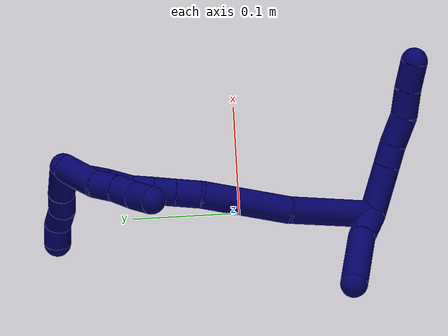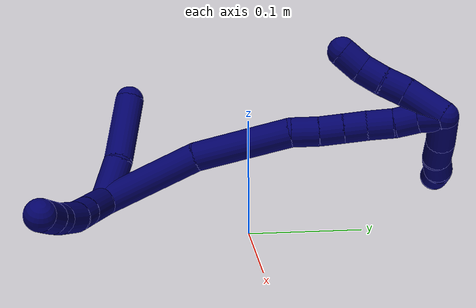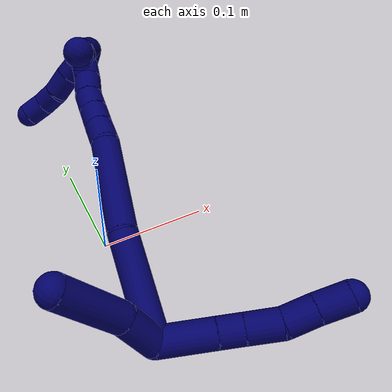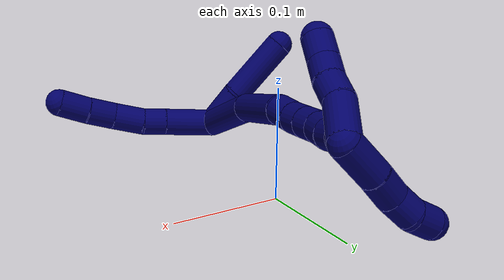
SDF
<sdf version="1.7">
 <world name="default">
  <model name="7">
   <static>0</static>
   <link name="7">
    <collision name="collision-cylinder-e_1_2_8">
     <pose>0.017908 -0.007844 0.012554 0.558454 0.880035 0.268352</pose>
     <geometry><cylinder><radius>0.0125</radius><length>0.046468</length></cylinder></geometry>
     <surface>
      <friction><ode><mu>1.16</mu><mu2>1.16</mu2><slip1>0</slip1><slip2>0</slip2></ode></friction>
      <contact><ode><kp>1e+06</kp><kd>1</kd><max_vel>0</max_vel><min_depth>0.001</min_depth></ode></contact>
     </surface>
    </collision>
    <visual name="visual-cylinder-e_1_2_8">
     <pose>0.017908 -0.007844 0.012554 0.558454 0.880035 0.268352</pose>
     <geometry><cylinder><radius>0.0125</radius><length>0.046468</length></cylinder></geometry>
     <material><ambient>0.003922 0 0.403922 1</ambient></material>
    </visual>
    <collision name="collision-cylinder-e_2_8_9">
     <pose>0.043946 -0.019224 0.030745 0.560308 0.884817 0.270932</pose>
     <geometry><cylinder><radius>0.0125</radius><length>0.021013</length></cylinder></geometry>
     <surface>
      <friction><ode><mu>1.16</mu><mu2>1.16</mu2><slip1>0</slip1><slip2>0</slip2></ode></friction>
      <contact><ode><kp>1e+06</kp><kd>1</kd><max_vel>0</max_vel><min_depth>0.001</min_depth></ode></contact>
     </surface>
    </collision>
    <visual name="visual-cylinder-e_2_8_9">
     <pose>0.043946 -0.019224 0.030745 0.560308 0.884817 0.270932</pose>
     <geometry><cylinder><radius>0.0125</radius><length>0.021013</length></cylinder></geometry>
     <material><ambient>0.003922 0 0.403922 1</ambient></material>
    </visual>
    <collision name="collision-cylinder-e_3_9_10">
     <pose>0.061524 -0.028903 0.045501 0.592827 0.709969 0.225464</pose>
     <geometry><cylinder><radius>0.0125</radius><length>0.028992</length></cylinder></geometry>
     <surface>
      <friction><ode><mu>1.16</mu><mu2>1.16</mu2><slip1>0</slip1><slip2>0</slip2></ode></friction>
      <contact><ode><kp>1e+06</kp><kd>1</kd><max_vel>0</max_vel><min_depth>0.001</min_depth></ode></contact>
     </surface>
    </collision>
    <visual name="visual-cylinder-e_3_9_10">
     <pose>0.061524 -0.028903 0.045501 0.592827 0.709969 0.225464</pose>
     <geometry><cylinder><radius>0.0125</radius><length>0.028992</length></cylinder></geometry>
     <material><ambient>0.003922 0 0.403922 1</ambient></material>
    </visual>
    <collision name="collision-cylinder-e_4_10_11">
     <pose>0.07919 -0.037752 0.064435 0.269073 0.678986 0.095532</pose>
     <geometry><cylinder><radius>0.0125</radius><length>0.02617</length></cylinder></geometry>
     <surface>
      <friction><ode><mu>1.16</mu><mu2>1.16</mu2><slip1>0</slip1><slip2>0</slip2></ode></friction>
      <contact><ode><kp>1e+06</kp><kd>1</kd><max_vel>0</max_vel><min_depth>0.001</min_depth></ode></contact>
     </surface>
    </collision>
    <visual name="visual-cylinder-e_4_10_11">
     <pose>0.07919 -0.037752 0.064435 0.269073 0.678986 0.095532</pose>
     <geometry><cylinder><radius>0.0125</radius><length>0.02617</length></cylinder></geometry>
     <material><ambient>0.003922 0 0.403922 1</ambient></material>
    </visual>
    <collision name="collision-cylinder-e_5_11_6">
     <pose>0.095411 -0.044386 0.084626 0.361773 0.625014 0.118041</pose>
     <geometry><cylinder><radius>0.0125</radius><length>0.027357</length></cylinder></geometry>
     <surface>
      <friction><ode><mu>1.16</mu><mu2>1.16</mu2><slip1>0</slip1><slip2>0</slip2></ode></friction>
      <contact><ode><kp>1e+06</kp><kd>1</kd><max_vel>0</max_vel><min_depth>0.001</min_depth></ode></contact>
     </surface>
    </collision>
    <visual name="visual-cylinder-e_5_11_6">
     <pose>0.095411 -0.044386 0.084626 0.361773 0.625014 0.118041</pose>
     <geometry><cylinder><radius>0.0125</radius><length>0.027357</length></cylinder></geometry>
     <material><ambient>0.003922 0 0.403922 1</ambient></material>
    </visual>
    <collision name="collision-cylinder-e_1_2_12">
     <pose>-0.016592 0.00426 0.008057 -0.486372 -1.06848 0.29148</pose>
     <geometry><cylinder><radius>0.0125</radius><length>0.03786</length></cylinder></geometry>
     <surface>
      <friction><ode><mu>1.16</mu><mu2>1.16</mu2><slip1>0</slip1><slip2>0</slip2></ode></friction>
      <contact><ode><kp>1e+06</kp><kd>1</kd><max_vel>0</max_vel><min_depth>0.001</min_depth></ode></contact>
     </surface>
    </collision>
    <visual name="visual-cylinder-e_1_2_12">
     <pose>-0.016592 0.00426 0.008057 -0.486372 -1.06848 0.29148</pose>
     <geometry><cylinder><radius>0.0125</radius><length>0.03786</length></cylinder></geometry>
     <material><ambient>0.003922 0 0.403922 1</ambient></material>
    </visual>
    <collision name="collision-cylinder-e_2_12_5">
     <pose>-0.062837 0.011309 0.024958 -0.305482 -1.2677 0.225342</pose>
     <geometry><cylinder><radius>0.0125</radius><length>0.06214</length></cylinder></geometry>
     <surface>
      <friction><ode><mu>1.16</mu><mu2>1.16</mu2><slip1>0</slip1><slip2>0</slip2></ode></friction>
      <contact><ode><kp>1e+06</kp><kd>1</kd><max_vel>0</max_vel><min_depth>0.001</min_depth></ode></contact>
     </surface>
    </collision>
    <visual name="visual-cylinder-e_2_12_5">
     <pose>-0.062837 0.011309 0.024958 -0.305482 -1.2677 0.225342</pose>
     <geometry><cylinder><radius>0.0125</radius><length>0.06214</length></cylinder></geometry>
     <material><ambient>0.003922 0 0.403922 1</ambient></material>
    </visual>
    <collision name="collision-cylinder-e_1_2_13">
     <pose>-0.009188 0.03622 0.022932 -1.00637 -0.211124 0.116513</pose>
     <geometry><cylinder><radius>0.0125</radius><length>0.087685</length></cylinder></geometry>
     <surface>
      <friction><ode><mu>1.16</mu><mu2>1.16</mu2><slip1>0</slip1><slip2>0</slip2></ode></friction>
      <contact><ode><kp>1e+06</kp><kd>1</kd><max_vel>0</max_vel><min_depth>0.001</min_depth></ode></contact>
     </surface>
    </collision>
    <visual name="visual-cylinder-e_1_2_13">
     <pose>-0.009188 0.03622 0.022932 -1.00637 -0.211124 0.116513</pose>
     <geometry><cylinder><radius>0.0125</radius><length>0.087685</length></cylinder></geometry>
     <material><ambient>0.003922 0 0.403922 1</ambient></material>
    </visual>
    <collision name="collision-cylinder-e_2_13_14">
     <pose>-0.019349 0.109798 0.064851 -1.10059 -0.023229 0.014252</pose>
     <geometry><cylinder><radius>0.0125</radius><length>0.083834</length></cylinder></geometry>
     <surface>
      <friction><ode><mu>1.16</mu><mu2>1.16</mu2><slip1>0</slip1><slip2>0</slip2></ode></friction>
      <contact><ode><kp>1e+06</kp><kd>1</kd><max_vel>0</max_vel><min_depth>0.001</min_depth></ode></contact>
     </surface>
    </collision>
    <visual name="visual-cylinder-e_2_13_14">
     <pose>-0.019349 0.109798 0.064851 -1.10059 -0.023229 0.014252</pose>
     <geometry><cylinder><radius>0.0125</radius><length>0.083834</length></cylinder></geometry>
     <material><ambient>0.003922 0 0.403922 1</ambient></material>
    </visual>
    <collision name="collision-cylinder-e_3_14_15">
     <pose>-0.020045 0.158579 0.0863 -1.35842 0.023721 -0.019151</pose>
     <geometry><cylinder><radius>0.0125</radius><length>0.023377</length></cylinder></geometry>
     <surface>
      <friction><ode><mu>1.16</mu><mu2>1.16</mu2><slip1>0</slip1><slip2>0</slip2></ode></friction>
      <contact><ode><kp>1e+06</kp><kd>1</kd><max_vel>0</max_vel><min_depth>0.001</min_depth></ode></contact>
     </surface>
    </collision>
    <visual name="visual-cylinder-e_3_14_15">
     <pose>-0.020045 0.158579 0.0863 -1.35842 0.023721 -0.019151</pose>
     <geometry><cylinder><radius>0.0125</radius><length>0.023377</length></cylinder></geometry>
     <material><ambient>0.003922 0 0.403922 1</ambient></material>
    </visual>
    <collision name="collision-cylinder-e_4_15_16">
     <pose>-0.019936 0.17984 0.09171 -1.27973 -0.016358 0.012176</pose>
     <geometry><cylinder><radius>0.0125</radius><length>0.020543</length></cylinder></geometry>
     <surface>
      <friction><ode><mu>1.16</mu><mu2>1.16</mu2><slip1>0</slip1><slip2>0</slip2></ode></friction>
      <contact><ode><kp>1e+06</kp><kd>1</kd><max_vel>0</max_vel><min_depth>0.001</min_depth></ode></contact>
     </surface>
    </collision>
    <visual name="visual-cylinder-e_4_15_16">
     <pose>-0.019936 0.17984 0.09171 -1.27973 -0.016358 0.012176</pose>
     <geometry><cylinder><radius>0.0125</radius><length>0.020543</length></cylinder></geometry>
     <material><ambient>0.003922 0 0.403922 1</ambient></material>
    </visual>
    <collision name="collision-cylinder-e_5_16_17">
     <pose>-0.020343 0.199312 0.09751 -1.28292 -0.023756 0.017742</pose>
     <geometry><cylinder><radius>0.0125</radius><length>0.020101</length></cylinder></geometry>
     <surface>
      <friction><ode><mu>1.16</mu><mu2>1.16</mu2><slip1>0</slip1><slip2>0</slip2></ode></friction>
      <contact><ode><kp>1e+06</kp><kd>1</kd><max_vel>0</max_vel><min_depth>0.001</min_depth></ode></contact>
     </surface>
    </collision>
    <visual name="visual-cylinder-e_5_16_17">
     <pose>-0.020343 0.199312 0.09751 -1.28292 -0.023756 0.017742</pose>
     <geometry><cylinder><radius>0.0125</radius><length>0.020101</length></cylinder></geometry>
     <material><ambient>0.003922 0 0.403922 1</ambient></material>
    </visual>
    <collision name="collision-cylinder-e_6_17_18">
     <pose>-0.019073 0.219406 0.104749 -1.17371 0.132224 -0.088002</pose>
     <geometry><cylinder><radius>0.0125</radius><length>0.022884</length></cylinder></geometry>
     <surface>
      <friction><ode><mu>1.16</mu><mu2>1.16</mu2><slip1>0</slip1><slip2>0</slip2></ode></friction>
      <contact><ode><kp>1e+06</kp><kd>1</kd><max_vel>0</max_vel><min_depth>0.001</min_depth></ode></contact>
     </surface>
    </collision>
    <visual name="visual-cylinder-e_6_17_18">
     <pose>-0.019073 0.219406 0.104749 -1.17371 0.132224 -0.088002</pose>
     <geometry><cylinder><radius>0.0125</radius><length>0.022884</length></cylinder></geometry>
     <material><ambient>0.003922 0 0.403922 1</ambient></material>
    </visual>
    <collision name="collision-cylinder-e_7_18_19">
     <pose>-0.01763 0.239233 0.113606 -1.12555 -0.006296 0.003972</pose>
     <geometry><cylinder><radius>0.0125</radius><length>0.02076</length></cylinder></geometry>
     <surface>
      <friction><ode><mu>1.16</mu><mu2>1.16</mu2><slip1>0</slip1><slip2>0</slip2></ode></friction>
      <contact><ode><kp>1e+06</kp><kd>1</kd><max_vel>0</max_vel><min_depth>0.001</min_depth></ode></contact>
     </surface>
    </collision>
    <visual name="visual-cylinder-e_7_18_19">
     <pose>-0.01763 0.239233 0.113606 -1.12555 -0.006296 0.003972</pose>
     <geometry><cylinder><radius>0.0125</radius><length>0.02076</length></cylinder></geometry>
     <material><ambient>0.003922 0 0.403922 1</ambient></material>
    </visual>
    <collision name="collision-cylinder-e_8_19_1">
     <pose>-0.014373 0.256989 0.123265 -1.01677 0.324846 -0.182122</pose>
     <geometry><cylinder><radius>0.0125</radius><length>0.020816</length></cylinder></geometry>
     <surface>
      <friction><ode><mu>1.16</mu><mu2>1.16</mu2><slip1>0</slip1><slip2>0</slip2></ode></friction>
      <contact><ode><kp>1e+06</kp><kd>1</kd><max_vel>0</max_vel><min_depth>0.001</min_depth></ode></contact>
     </surface>
    </collision>
    <visual name="visual-cylinder-e_8_19_1">
     <pose>-0.014373 0.256989 0.123265 -1.01677 0.324846 -0.182122</pose>
     <geometry><cylinder><radius>0.0125</radius><length>0.020816</length></cylinder></geometry>
     <material><ambient>0.003922 0 0.403922 1</ambient></material>
    </visual>
    <collision name="collision-cylinder-e_1_1_20">
     <pose>-0.021859 0.250314 0.129977 1.47008 -0.619995 -0.563751</pose>
     <geometry><cylinder><radius>0.0125</radius><length>0.037202</length></cylinder></geometry>
     <surface>
      <friction><ode><mu>1.16</mu><mu2>1.16</mu2><slip1>0</slip1><slip2>0</slip2></ode></friction>
      <contact><ode><kp>1e+06</kp><kd>1</kd><max_vel>0</max_vel><min_depth>0.001</min_depth></ode></contact>
     </surface>
    </collision>
    <visual name="visual-cylinder-e_1_1_20">
     <pose>-0.021859 0.250314 0.129977 1.47008 -0.619995 -0.563751</pose>
     <geometry><cylinder><radius>0.0125</radius><length>0.037202</length></cylinder></geometry>
     <material><ambient>0.003922 0 0.403922 1</ambient></material>
    </visual>
    <collision name="collision-cylinder-e_2_20_21">
     <pose>-0.036436 0.225397 0.132806 1.43895 -0.362368 -0.318292</pose>
     <geometry><cylinder><radius>0.0125</radius><length>0.021264</length></cylinder></geometry>
     <surface>
      <friction><ode><mu>1.16</mu><mu2>1.16</mu2><slip1>0</slip1><slip2>0</slip2></ode></friction>
      <contact><ode><kp>1e+06</kp><kd>1</kd><max_vel>0</max_vel><min_depth>0.001</min_depth></ode></contact>
     </surface>
    </collision>
    <visual name="visual-cylinder-e_2_20_21">
     <pose>-0.036436 0.225397 0.132806 1.43895 -0.362368 -0.318292</pose>
     <geometry><cylinder><radius>0.0125</radius><length>0.021264</length></cylinder></geometry>
     <material><ambient>0.003922 0 0.403922 1</ambient></material>
    </visual>
    <collision name="collision-cylinder-e_3_21_22">
     <pose>-0.045143 0.206849 0.135258 1.43985 -0.512943 -0.452088</pose>
     <geometry><cylinder><radius>0.0125</radius><length>0.020125</length></cylinder></geometry>
     <surface>
      <friction><ode><mu>1.16</mu><mu2>1.16</mu2><slip1>0</slip1><slip2>0</slip2></ode></friction>
      <contact><ode><kp>1e+06</kp><kd>1</kd><max_vel>0</max_vel><min_depth>0.001</min_depth></ode></contact>
     </surface>
    </collision>
    <visual name="visual-cylinder-e_3_21_22">
     <pose>-0.045143 0.206849 0.135258 1.43985 -0.512943 -0.452088</pose>
     <geometry><cylinder><radius>0.0125</radius><length>0.020125</length></cylinder></geometry>
     <material><ambient>0.003922 0 0.403922 1</ambient></material>
    </visual>
    <collision name="collision-cylinder-e_4_22_4">
     <pose>-0.055268 0.189478 0.13992 1.18566 -0.505829 -0.34476</pose>
     <geometry><cylinder><radius>0.0125</radius><length>0.021409</length></cylinder></geometry>
     <surface>
      <friction><ode><mu>1.16</mu><mu2>1.16</mu2><slip1>0</slip1><slip2>0</slip2></ode></friction>
      <contact><ode><kp>1e+06</kp><kd>1</kd><max_vel>0</max_vel><min_depth>0.001</min_depth></ode></contact>
     </surface>
    </collision>
    <visual name="visual-cylinder-e_4_22_4">
     <pose>-0.055268 0.189478 0.13992 1.18566 -0.505829 -0.34476</pose>
     <geometry><cylinder><radius>0.0125</radius><length>0.021409</length></cylinder></geometry>
     <material><ambient>0.003922 0 0.403922 1</ambient></material>
    </visual>
    <collision name="collision-cylinder-e_1_1_23">
     <pose>-0.013927 0.269581 0.111565 -2.8976 -0.163751 1.17965</pose>
     <geometry><cylinder><radius>0.0125</radius><length>0.035282</length></cylinder></geometry>
     <surface>
      <friction><ode><mu>1.16</mu><mu2>1.16</mu2><slip1>0</slip1><slip2>0</slip2></ode></friction>
      <contact><ode><kp>1e+06</kp><kd>1</kd><max_vel>0</max_vel><min_depth>0.001</min_depth></ode></contact>
     </surface>
    </collision>
    <visual name="visual-cylinder-e_1_1_23">
     <pose>-0.013927 0.269581 0.111565 -2.8976 -0.163751 1.17965</pose>
     <geometry><cylinder><radius>0.0125</radius><length>0.035282</length></cylinder></geometry>
     <material><ambient>0.003922 0 0.403922 1</ambient></material>
    </visual>
    <collision name="collision-cylinder-e_2_23_24">
     <pose>-0.018337 0.275792 0.082973 -2.97179 -0.128444 1.29421</pose>
     <geometry><cylinder><radius>0.0125</radius><length>0.023945</length></cylinder></geometry>
     <surface>
      <friction><ode><mu>1.16</mu><mu2>1.16</mu2><slip1>0</slip1><slip2>0</slip2></ode></friction>
      <contact><ode><kp>1e+06</kp><kd>1</kd><max_vel>0</max_vel><min_depth>0.001</min_depth></ode></contact>
     </surface>
    </collision>
    <visual name="visual-cylinder-e_2_23_24">
     <pose>-0.018337 0.275792 0.082973 -2.97179 -0.128444 1.29421</pose>
     <geometry><cylinder><radius>0.0125</radius><length>0.023945</length></cylinder></geometry>
     <material><ambient>0.003922 0 0.403922 1</ambient></material>
    </visual>
    <collision name="collision-cylinder-e_3_24_25">
     <pose>-0.022029 0.28164 0.061972 -2.74983 -0.21136 0.981862</pose>
     <geometry><cylinder><radius>0.0125</radius><length>0.020579</length></cylinder></geometry>
     <surface>
      <friction><ode><mu>1.16</mu><mu2>1.16</mu2><slip1>0</slip1><slip2>0</slip2></ode></friction>
      <contact><ode><kp>1e+06</kp><kd>1</kd><max_vel>0</max_vel><min_depth>0.001</min_depth></ode></contact>
     </surface>
    </collision>
    <visual name="visual-cylinder-e_3_24_25">
     <pose>-0.022029 0.28164 0.061972 -2.74983 -0.21136 0.981862</pose>
     <geometry><cylinder><radius>0.0125</radius><length>0.020579</length></cylinder></geometry>
     <material><ambient>0.003922 0 0.403922 1</ambient></material>
    </visual>
    <collision name="collision-cylinder-e_4_25_3">
     <pose>-0.028958 0.287033 0.043911 -2.96631 -0.492055 2.46841</pose>
     <geometry><cylinder><radius>0.0125</radius><length>0.020195</length></cylinder></geometry>
     <surface>
      <friction><ode><mu>1.16</mu><mu2>1.16</mu2><slip1>0</slip1><slip2>0</slip2></ode></friction>
      <contact><ode><kp>1e+06</kp><kd>1</kd><max_vel>0</max_vel><min_depth>0.001</min_depth></ode></contact>
     </surface>
    </collision>
    <visual name="visual-cylinder-e_4_25_3">
     <pose>-0.028958 0.287033 0.043911 -2.96631 -0.492055 2.46841</pose>
     <geometry><cylinder><radius>0.0125</radius><length>0.020195</length></cylinder></geometry>
     <material><ambient>0.003922 0 0.403922 1</ambient></material>
    </visual>
    <collision name="collision-sphere-3">
     <pose>-0.033728 0.288585 0.035147 0 -0 0</pose>
     <geometry><sphere><radius>0.0125</radius></sphere></geometry>
     <surface>
      <friction><ode><mu>1.16</mu><mu2>1.16</mu2><slip1>0</slip1><slip2>0</slip2></ode></friction>
      <contact><ode><kp>1e+06</kp><kd>1</kd><max_vel>0</max_vel><min_depth>0.001</min_depth></ode></contact>
     </surface>
    </collision>
    <visual name="visual-sphere-3">
     <pose>-0.033728 0.288585 0.035147 0 -0 0</pose>
     <geometry><sphere><radius>0.0125</radius></sphere></geometry>
     <material><ambient>0.003922 0 0.403922 1</ambient></material>
    </visual>
    <collision name="collision-sphere-25">
     <pose>-0.024188 0.285481 0.052674 0 -0 0</pose>
     <geometry><sphere><radius>0.0125</radius></sphere></geometry>
     <surface>
      <friction><ode><mu>1.16</mu><mu2>1.16</mu2><slip1>0</slip1><slip2>0</slip2></ode></friction>
      <contact><ode><kp>1e+06</kp><kd>1</kd><max_vel>0</max_vel><min_depth>0.001</min_depth></ode></contact>
     </surface>
    </collision>
    <visual name="visual-sphere-25">
     <pose>-0.024188 0.285481 0.052674 0 -0 0</pose>
     <geometry><sphere><radius>0.0125</radius></sphere></geometry>
     <material><ambient>0.003922 0 0.403922 1</ambient></material>
    </visual>
    <collision name="collision-sphere-24">
     <pose>-0.01987 0.277799 0.07127 0 -0 0</pose>
     <geometry><sphere><radius>0.0125</radius></sphere></geometry>
     <surface>
      <friction><ode><mu>1.16</mu><mu2>1.16</mu2><slip1>0</slip1><slip2>0</slip2></ode></friction>
      <contact><ode><kp>1e+06</kp><kd>1</kd><max_vel>0</max_vel><min_depth>0.001</min_depth></ode></contact>
     </surface>
    </collision>
    <visual name="visual-sphere-24">
     <pose>-0.01987 0.277799 0.07127 0 -0 0</pose>
     <geometry><sphere><radius>0.0125</radius></sphere></geometry>
     <material><ambient>0.003922 0 0.403922 1</ambient></material>
    </visual>
    <collision name="collision-sphere-23">
     <pose>-0.016803 0.273786 0.094676 0 -0 0</pose>
     <geometry><sphere><radius>0.0125</radius></sphere></geometry>
     <surface>
      <friction><ode><mu>1.16</mu><mu2>1.16</mu2><slip1>0</slip1><slip2>0</slip2></ode></friction>
      <contact><ode><kp>1e+06</kp><kd>1</kd><max_vel>0</max_vel><min_depth>0.001</min_depth></ode></contact>
     </surface>
    </collision>
    <visual name="visual-sphere-23">
     <pose>-0.016803 0.273786 0.094676 0 -0 0</pose>
     <geometry><sphere><radius>0.0125</radius></sphere></geometry>
     <material><ambient>0.003922 0 0.403922 1</ambient></material>
    </visual>
    <collision name="collision-sphere-4">
     <pose>-0.060455 0.1808 0.143438 0 -0 0</pose>
     <geometry><sphere><radius>0.0125</radius></sphere></geometry>
     <surface>
      <friction><ode><mu>1.16</mu><mu2>1.16</mu2><slip1>0</slip1><slip2>0</slip2></ode></friction>
      <contact><ode><kp>1e+06</kp><kd>1</kd><max_vel>0</max_vel><min_depth>0.001</min_depth></ode></contact>
     </surface>
    </collision>
    <visual name="visual-sphere-4">
     <pose>-0.060455 0.1808 0.143438 0 -0 0</pose>
     <geometry><sphere><radius>0.0125</radius></sphere></geometry>
     <material><ambient>0.003922 0 0.403922 1</ambient></material>
    </visual>
    <collision name="collision-sphere-22">
     <pose>-0.050081 0.198156 0.136402 0 -0 0</pose>
     <geometry><sphere><radius>0.0125</radius></sphere></geometry>
     <surface>
      <friction><ode><mu>1.16</mu><mu2>1.16</mu2><slip1>0</slip1><slip2>0</slip2></ode></friction>
      <contact><ode><kp>1e+06</kp><kd>1</kd><max_vel>0</max_vel><min_depth>0.001</min_depth></ode></contact>
     </surface>
    </collision>
    <visual name="visual-sphere-22">
     <pose>-0.050081 0.198156 0.136402 0 -0 0</pose>
     <geometry><sphere><radius>0.0125</radius></sphere></geometry>
     <material><ambient>0.003922 0 0.403922 1</ambient></material>
    </visual>
    <collision name="collision-sphere-21">
     <pose>-0.040205 0.215541 0.134113 0 -0 0</pose>
     <geometry><sphere><radius>0.0125</radius></sphere></geometry>
     <surface>
      <friction><ode><mu>1.16</mu><mu2>1.16</mu2><slip1>0</slip1><slip2>0</slip2></ode></friction>
      <contact><ode><kp>1e+06</kp><kd>1</kd><max_vel>0</max_vel><min_depth>0.001</min_depth></ode></contact>
     </surface>
    </collision>
    <visual name="visual-sphere-21">
     <pose>-0.040205 0.215541 0.134113 0 -0 0</pose>
     <geometry><sphere><radius>0.0125</radius></sphere></geometry>
     <material><ambient>0.003922 0 0.403922 1</ambient></material>
    </visual>
    <collision name="collision-sphere-20">
     <pose>-0.032667 0.235252 0.131499 0 -0 0</pose>
     <geometry><sphere><radius>0.0125</radius></sphere></geometry>
     <surface>
      <friction><ode><mu>1.16</mu><mu2>1.16</mu2><slip1>0</slip1><slip2>0</slip2></ode></friction>
      <contact><ode><kp>1e+06</kp><kd>1</kd><max_vel>0</max_vel><min_depth>0.001</min_depth></ode></contact>
     </surface>
    </collision>
    <visual name="visual-sphere-20">
     <pose>-0.032667 0.235252 0.131499 0 -0 0</pose>
     <geometry><sphere><radius>0.0125</radius></sphere></geometry>
     <material><ambient>0.003922 0 0.403922 1</ambient></material>
    </visual>
    <collision name="collision-sphere-6">
     <pose>0.103415 -0.048312 0.095001 0 -0 0</pose>
     <geometry><sphere><radius>0.0125</radius></sphere></geometry>
     <surface>
      <friction><ode><mu>1.16</mu><mu2>1.16</mu2><slip1>0</slip1><slip2>0</slip2></ode></friction>
      <contact><ode><kp>1e+06</kp><kd>1</kd><max_vel>0</max_vel><min_depth>0.001</min_depth></ode></contact>
     </surface>
    </collision>
    <visual name="visual-sphere-6">
     <pose>0.103415 -0.048312 0.095001 0 -0 0</pose>
     <geometry><sphere><radius>0.0125</radius></sphere></geometry>
     <material><ambient>0.003922 0 0.403922 1</ambient></material>
    </visual>
    <collision name="collision-sphere-11">
     <pose>0.087408 -0.040459 0.074251 0 -0 0</pose>
     <geometry><sphere><radius>0.0125</radius></sphere></geometry>
     <surface>
      <friction><ode><mu>1.16</mu><mu2>1.16</mu2><slip1>0</slip1><slip2>0</slip2></ode></friction>
      <contact><ode><kp>1e+06</kp><kd>1</kd><max_vel>0</max_vel><min_depth>0.001</min_depth></ode></contact>
     </surface>
    </collision>
    <visual name="visual-sphere-11">
     <pose>0.087408 -0.040459 0.074251 0 -0 0</pose>
     <geometry><sphere><radius>0.0125</radius></sphere></geometry>
     <material><ambient>0.003922 0 0.403922 1</ambient></material>
    </visual>
    <collision name="collision-sphere-10">
     <pose>0.070973 -0.035045 0.054618 0 -0 0</pose>
     <geometry><sphere><radius>0.0125</radius></sphere></geometry>
     <surface>
      <friction><ode><mu>1.16</mu><mu2>1.16</mu2><slip1>0</slip1><slip2>0</slip2></ode></friction>
      <contact><ode><kp>1e+06</kp><kd>1</kd><max_vel>0</max_vel><min_depth>0.001</min_depth></ode></contact>
     </surface>
    </collision>
    <visual name="visual-sphere-10">
     <pose>0.070973 -0.035045 0.054618 0 -0 0</pose>
     <geometry><sphere><radius>0.0125</radius></sphere></geometry>
     <material><ambient>0.003922 0 0.403922 1</ambient></material>
    </visual>
    <collision name="collision-sphere-9">
     <pose>0.052075 -0.022761 0.036383 0 -0 0</pose>
     <geometry><sphere><radius>0.0125</radius></sphere></geometry>
     <surface>
      <friction><ode><mu>1.16</mu><mu2>1.16</mu2><slip1>0</slip1><slip2>0</slip2></ode></friction>
      <contact><ode><kp>1e+06</kp><kd>1</kd><max_vel>0</max_vel><min_depth>0.001</min_depth></ode></contact>
     </surface>
    </collision>
    <visual name="visual-sphere-9">
     <pose>0.052075 -0.022761 0.036383 0 -0 0</pose>
     <geometry><sphere><radius>0.0125</radius></sphere></geometry>
     <material><ambient>0.003922 0 0.403922 1</ambient></material>
    </visual>
    <collision name="collision-sphere-2">
     <geometry><sphere><radius>0.0125</radius></sphere></geometry>
     <surface>
      <friction><ode><mu>1.16</mu><mu2>1.16</mu2><slip1>0</slip1><slip2>0</slip2></ode></friction>
      <contact><ode><kp>1e+06</kp><kd>1</kd><max_vel>0</max_vel><min_depth>0.001</min_depth></ode></contact>
     </surface>
    </collision>
    <visual name="visual-sphere-2">
     <geometry><sphere><radius>0.0125</radius></sphere></geometry>
     <material><ambient>0.003922 0 0.403922 1</ambient></material>
    </visual>
    <collision name="collision-sphere-19">
     <pose>-0.017695 0.248601 0.118076 0 -0 0</pose>
     <geometry><sphere><radius>0.0125</radius></sphere></geometry>
     <surface>
      <friction><ode><mu>1.16</mu><mu2>1.16</mu2><slip1>0</slip1><slip2>0</slip2></ode></friction>
      <contact><ode><kp>1e+06</kp><kd>1</kd><max_vel>0</max_vel><min_depth>0.001</min_depth></ode></contact>
     </surface>
    </collision>
    <visual name="visual-sphere-19">
     <pose>-0.017695 0.248601 0.118076 0 -0 0</pose>
     <geometry><sphere><radius>0.0125</radius></sphere></geometry>
     <material><ambient>0.003922 0 0.403922 1</ambient></material>
    </visual>
    <collision name="collision-sphere-8">
     <pose>0.035816 -0.015687 0.025108 0 -0 0</pose>
     <geometry><sphere><radius>0.0125</radius></sphere></geometry>
     <surface>
      <friction><ode><mu>1.16</mu><mu2>1.16</mu2><slip1>0</slip1><slip2>0</slip2></ode></friction>
      <contact><ode><kp>1e+06</kp><kd>1</kd><max_vel>0</max_vel><min_depth>0.001</min_depth></ode></contact>
     </surface>
    </collision>
    <visual name="visual-sphere-8">
     <pose>0.035816 -0.015687 0.025108 0 -0 0</pose>
     <geometry><sphere><radius>0.0125</radius></sphere></geometry>
     <material><ambient>0.003922 0 0.403922 1</ambient></material>
    </visual>
    <collision name="collision-sphere-12">
     <pose>-0.033183 0.00852 0.016114 0 -0 0</pose>
     <geometry><sphere><radius>0.0125</radius></sphere></geometry>
     <surface>
      <friction><ode><mu>1.16</mu><mu2>1.16</mu2><slip1>0</slip1><slip2>0</slip2></ode></friction>
      <contact><ode><kp>1e+06</kp><kd>1</kd><max_vel>0</max_vel><min_depth>0.001</min_depth></ode></contact>
     </surface>
    </collision>
    <visual name="visual-sphere-12">
     <pose>-0.033183 0.00852 0.016114 0 -0 0</pose>
     <geometry><sphere><radius>0.0125</radius></sphere></geometry>
     <material><ambient>0.003922 0 0.403922 1</ambient></material>
    </visual>
    <collision name="collision-sphere-5">
     <pose>-0.092491 0.014098 0.033803 0 -0 0</pose>
     <geometry><sphere><radius>0.0125</radius></sphere></geometry>
     <surface>
      <friction><ode><mu>1.16</mu><mu2>1.16</mu2><slip1>0</slip1><slip2>0</slip2></ode></friction>
      <contact><ode><kp>1e+06</kp><kd>1</kd><max_vel>0</max_vel><min_depth>0.001</min_depth></ode></contact>
     </surface>
    </collision>
    <visual name="visual-sphere-5">
     <pose>-0.092491 0.014098 0.033803 0 -0 0</pose>
     <geometry><sphere><radius>0.0125</radius></sphere></geometry>
     <material><ambient>0.003922 0 0.403922 1</ambient></material>
    </visual>
    <collision name="collision-sphere-13">
     <pose>-0.018375 0.07244 0.045864 0 -0 0</pose>
     <geometry><sphere><radius>0.0125</radius></sphere></geometry>
     <surface>
      <friction><ode><mu>1.16</mu><mu2>1.16</mu2><slip1>0</slip1><slip2>0</slip2></ode></friction>
      <contact><ode><kp>1e+06</kp><kd>1</kd><max_vel>0</max_vel><min_depth>0.001</min_depth></ode></contact>
     </surface>
    </collision>
    <visual name="visual-sphere-13">
     <pose>-0.018375 0.07244 0.045864 0 -0 0</pose>
     <geometry><sphere><radius>0.0125</radius></sphere></geometry>
     <material><ambient>0.003922 0 0.403922 1</ambient></material>
    </visual>
    <collision name="collision-sphere-14">
     <pose>-0.020322 0.147156 0.083837 0 -0 0</pose>
     <geometry><sphere><radius>0.0125</radius></sphere></geometry>
     <surface>
      <friction><ode><mu>1.16</mu><mu2>1.16</mu2><slip1>0</slip1><slip2>0</slip2></ode></friction>
      <contact><ode><kp>1e+06</kp><kd>1</kd><max_vel>0</max_vel><min_depth>0.001</min_depth></ode></contact>
     </surface>
    </collision>
    <visual name="visual-sphere-14">
     <pose>-0.020322 0.147156 0.083837 0 -0 0</pose>
     <geometry><sphere><radius>0.0125</radius></sphere></geometry>
     <material><ambient>0.003922 0 0.403922 1</ambient></material>
    </visual>
    <collision name="collision-sphere-15">
     <pose>-0.019768 0.170001 0.088763 0 -0 0</pose>
     <geometry><sphere><radius>0.0125</radius></sphere></geometry>
     <surface>
      <friction><ode><mu>1.16</mu><mu2>1.16</mu2><slip1>0</slip1><slip2>0</slip2></ode></friction>
      <contact><ode><kp>1e+06</kp><kd>1</kd><max_vel>0</max_vel><min_depth>0.001</min_depth></ode></contact>
     </surface>
    </collision>
    <visual name="visual-sphere-15">
     <pose>-0.019768 0.170001 0.088763 0 -0 0</pose>
     <geometry><sphere><radius>0.0125</radius></sphere></geometry>
     <material><ambient>0.003922 0 0.403922 1</ambient></material>
    </visual>
    <collision name="collision-sphere-16">
     <pose>-0.020104 0.189678 0.094658 0 -0 0</pose>
     <geometry><sphere><radius>0.0125</radius></sphere></geometry>
     <surface>
      <friction><ode><mu>1.16</mu><mu2>1.16</mu2><slip1>0</slip1><slip2>0</slip2></ode></friction>
      <contact><ode><kp>1e+06</kp><kd>1</kd><max_vel>0</max_vel><min_depth>0.001</min_depth></ode></contact>
     </surface>
    </collision>
    <visual name="visual-sphere-16">
     <pose>-0.020104 0.189678 0.094658 0 -0 0</pose>
     <geometry><sphere><radius>0.0125</radius></sphere></geometry>
     <material><ambient>0.003922 0 0.403922 1</ambient></material>
    </visual>
    <collision name="collision-sphere-17">
     <pose>-0.020581 0.208946 0.100363 0 -0 0</pose>
     <geometry><sphere><radius>0.0125</radius></sphere></geometry>
     <surface>
      <friction><ode><mu>1.16</mu><mu2>1.16</mu2><slip1>0</slip1><slip2>0</slip2></ode></friction>
      <contact><ode><kp>1e+06</kp><kd>1</kd><max_vel>0</max_vel><min_depth>0.001</min_depth></ode></contact>
     </surface>
    </collision>
    <visual name="visual-sphere-17">
     <pose>-0.020581 0.208946 0.100363 0 -0 0</pose>
     <geometry><sphere><radius>0.0125</radius></sphere></geometry>
     <material><ambient>0.003922 0 0.403922 1</ambient></material>
    </visual>
    <collision name="collision-sphere-18">
     <pose>-0.017565 0.229865 0.109136 0 -0 0</pose>
     <geometry><sphere><radius>0.0125</radius></sphere></geometry>
     <surface>
      <friction><ode><mu>1.16</mu><mu2>1.16</mu2><slip1>0</slip1><slip2>0</slip2></ode></friction>
      <contact><ode><kp>1e+06</kp><kd>1</kd><max_vel>0</max_vel><min_depth>0.001</min_depth></ode></contact>
     </surface>
    </collision>
    <visual name="visual-sphere-18">
     <pose>-0.017565 0.229865 0.109136 0 -0 0</pose>
     <geometry><sphere><radius>0.0125</radius></sphere></geometry>
     <material><ambient>0.003922 0 0.403922 1</ambient></material>
    </visual>
    <collision name="collision-sphere-1">
     <pose>-0.011052 0.265377 0.128455 0 -0 0</pose>
     <geometry><sphere><radius>0.0125</radius></sphere></geometry>
     <surface>
      <friction><ode><mu>1.16</mu><mu2>1.16</mu2><slip1>0</slip1><slip2>0</slip2></ode></friction>
      <contact><ode><kp>1e+06</kp><kd>1</kd><max_vel>0</max_vel><min_depth>0.001</min_depth></ode></contact>
     </surface>
    </collision>
    <visual name="visual-sphere-1">
     <pose>-0.011052 0.265377 0.128455 0 -0 0</pose>
     <geometry><sphere><radius>0.0125</radius></sphere></geometry>
     <material><ambient>0.003922 0 0.403922 1</ambient></material>
    </visual>
    <inertial>
     <pose>-0.009034 0.11495 0.067331 0 -0 0</pose>
     <mass>0.75</mass>
     <inertia>
      <ixx>0.000165</ixx>
      <ixy>0</ixy>
      <ixz>0</ixz>
      <iyy>0.00014</iyy>
      <iyz>0</iyz>
      <izz>-4.9e-05</izz>
     </inertia>
    </inertial>
   </link>
   <pose>-0.007061 -0.123264 0.032122 -0.153476 0.563272 -0.078999</pose>
  </model>
 </world>
</sdf>
